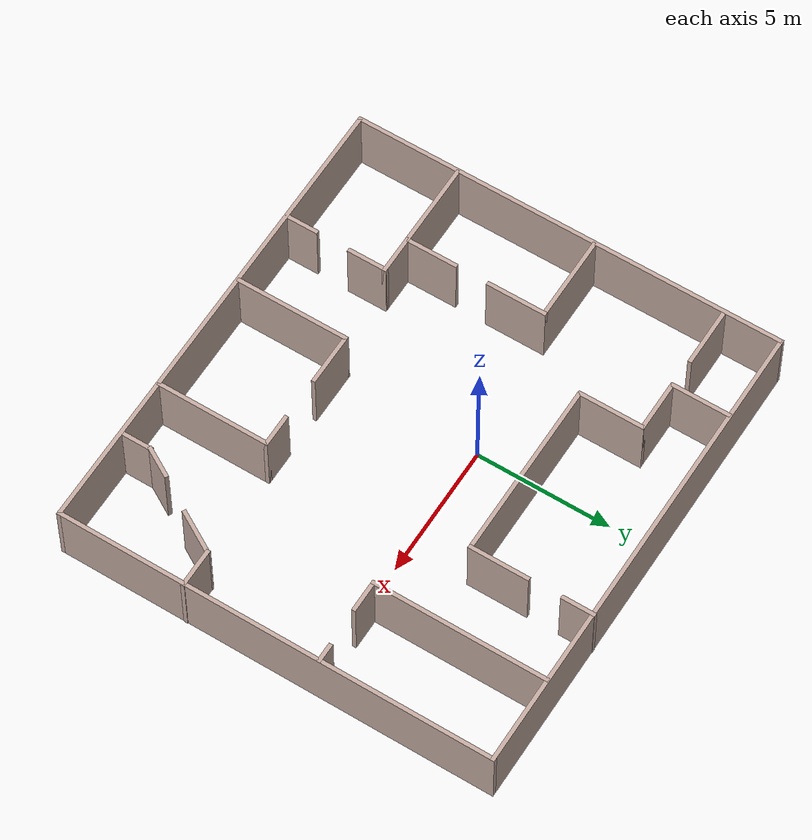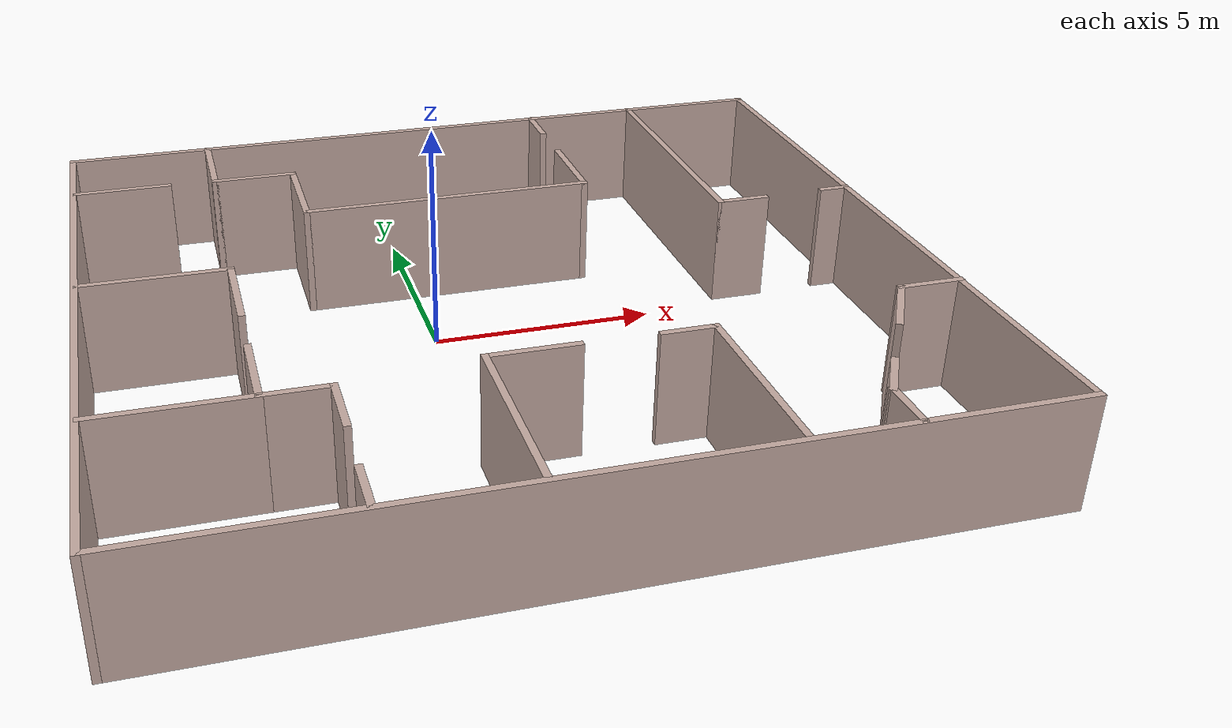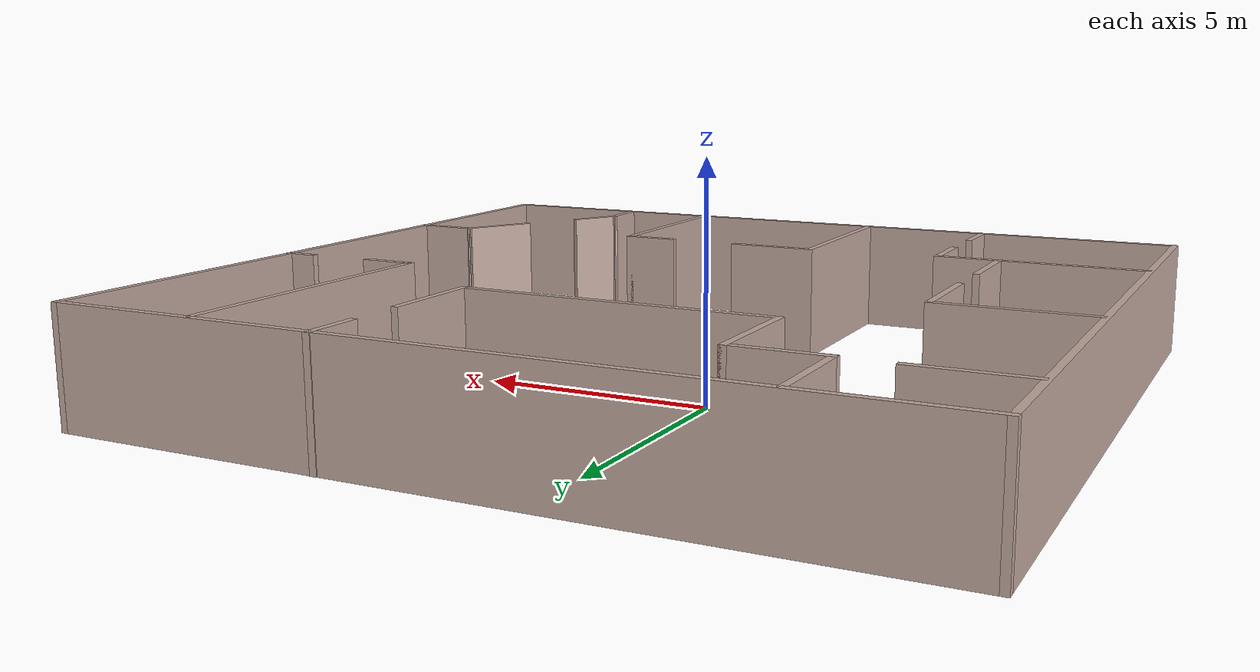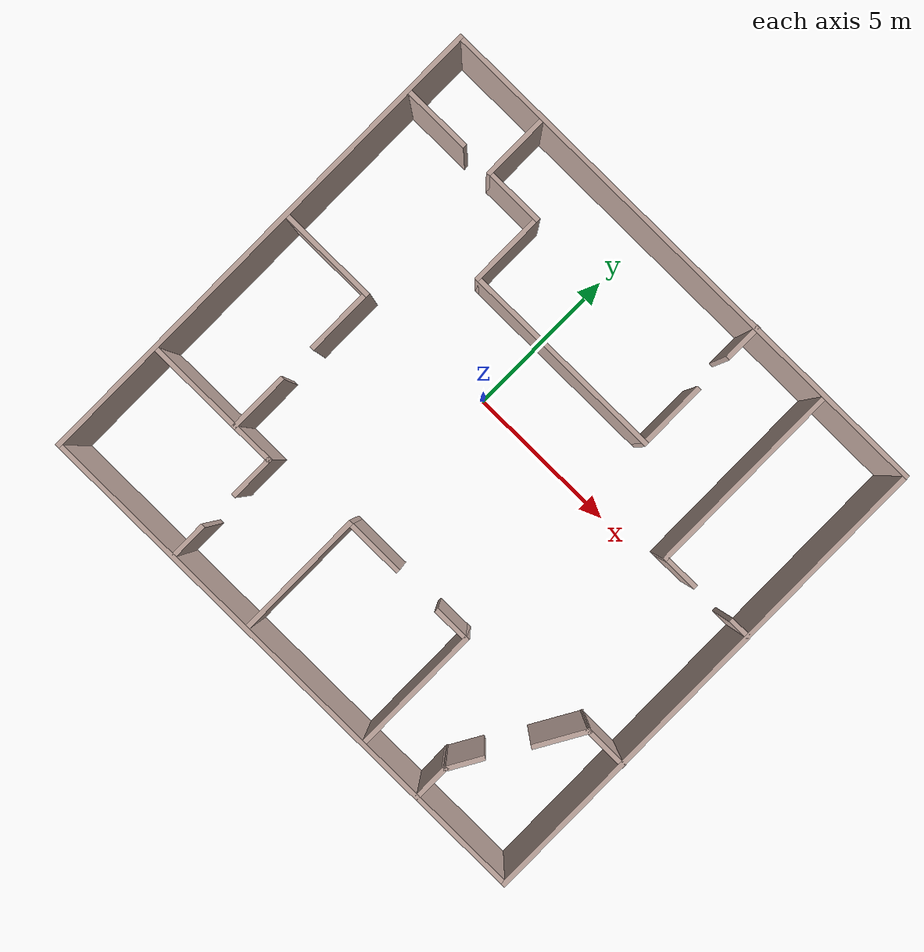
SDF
<?xml version='1.0'?>
<sdf version='1.6'>
  <model name='world2'>
    <pose frame=''>1.2436 -1.27386 0 0 -0 0</pose>
    <link name='Wall_14'>
      <collision name='Wall_14_Collision'>
        <geometry>
          <box>
            <size>16.25 0.15 2.5</size>
          </box>
        </geometry>
        <pose frame=''>0 0 1.25 0 -0 0</pose>
      </collision>
      <visual name='Wall_14_Visual'>
        <pose frame=''>0 0 1.25 0 -0 0</pose>
        <geometry>
          <box>
            <size>16.25 0.15 2.5</size>
          </box>
        </geometry>
        <material>
          <script>
            <uri>file://media/materials/scripts/gazebo.material</uri>
            <name>Gazebo/Grey</name>
          </script>
          <ambient>0.760784 0.662745 0.627451 1</ambient>
        </material>
        <meta>
          <layer>0</layer>
        </meta>
      </visual>
      <pose frame=''>-8.81102 -0.008737 0 0 0 -1.5708</pose>
    </link>
    <link name='Wall_18'>
      <collision name='Wall_18_Collision'>
        <geometry>
          <box>
            <size>17.75 0.15 2.5</size>
          </box>
        </geometry>
        <pose frame=''>0 0 1.25 0 -0 0</pose>
      </collision>
      <visual name='Wall_18_Visual'>
        <pose frame=''>0 0 1.25 0 -0 0</pose>
        <geometry>
          <box>
            <size>17.75 0.15 2.5</size>
          </box>
        </geometry>
        <material>
          <script>
            <uri>file://media/materials/scripts/gazebo.material</uri>
            <name>Gazebo/Grey</name>
          </script>
          <ambient>0.760784 0.662745 0.627451 1</ambient>
        </material>
        <meta>
          <layer>0</layer>
        </meta>
      </visual>
      <pose frame=''>-0.011023 8.04126 0 0 -0 0</pose>
    </link>
    <link name='Wall_19'>
      <collision name='Wall_19_Collision'>
        <geometry>
          <box>
            <size>16.25 0.15 2.5</size>
          </box>
        </geometry>
        <pose frame=''>0 0 1.25 0 -0 0</pose>
      </collision>
      <visual name='Wall_19_Visual'>
        <pose frame=''>0 0 1.25 0 -0 0</pose>
        <geometry>
          <box>
            <size>16.25 0.15 2.5</size>
          </box>
        </geometry>
        <material>
          <script>
            <uri>file://media/materials/scripts/gazebo.material</uri>
            <name>Gazebo/Grey</name>
          </script>
          <ambient>0.760784 0.662745 0.627451 1</ambient>
        </material>
        <meta>
          <layer>0</layer>
        </meta>
      </visual>
      <pose frame=''>8.78898 -0.008737 0 0 0 -1.5708</pose>
    </link>
    <link name='Wall_20'>
      <collision name='Wall_20_Collision'>
        <geometry>
          <box>
            <size>17.75 0.15 2.5</size>
          </box>
        </geometry>
        <pose frame=''>0 0 1.25 0 -0 0</pose>
      </collision>
      <visual name='Wall_20_Visual'>
        <pose frame=''>0 0 1.25 0 -0 0</pose>
        <geometry>
          <box>
            <size>17.75 0.15 2.5</size>
          </box>
        </geometry>
        <material>
          <script>
            <uri>file://media/materials/scripts/gazebo.material</uri>
            <name>Gazebo/Grey</name>
          </script>
          <ambient>0.760784 0.662745 0.627451 1</ambient>
        </material>
        <meta>
          <layer>0</layer>
        </meta>
      </visual>
      <pose frame=''>-0.011023 -8.05874 0 0 -0 3.14159</pose>
    </link>
    <link name='Wall_22'>
      <collision name='Wall_22_Collision'>
        <geometry>
          <box>
            <size>2.25 0.15 2.5</size>
          </box>
        </geometry>
        <pose frame=''>0 0 1.25 0 -0 0</pose>
      </collision>
      <visual name='Wall_22_Visual'>
        <pose frame=''>0 0 1.25 0 -0 0</pose>
        <geometry>
          <box>
            <size>2.25 0.15 2.5</size>
          </box>
        </geometry>
        <material>
          <script>
            <uri>file://media/materials/scripts/gazebo.material</uri>
            <name>Gazebo/Grey</name>
          </script>
          <ambient>0.760784 0.662745 0.627451 1</ambient>
        </material>
        <meta>
          <layer>0</layer>
        </meta>
      </visual>
      <pose frame=''>-7.69336 5.9402 0 0 -0 0</pose>
    </link>
    <link name='Wall_28'>
      <collision name='Wall_28_Collision'>
        <geometry>
          <box>
            <size>2.25 0.15 2.5</size>
          </box>
        </geometry>
        <pose frame=''>0 0 1.25 0 -0 0</pose>
      </collision>
      <visual name='Wall_28_Visual'>
        <pose frame=''>0 0 1.25 0 -0 0</pose>
        <geometry>
          <box>
            <size>2.25 0.15 2.5</size>
          </box>
        </geometry>
        <material>
          <script>
            <uri>file://media/materials/scripts/gazebo.material</uri>
            <name>Gazebo/Grey</name>
          </script>
          <ambient>0.760784 0.662745 0.627451 1</ambient>
        </material>
        <meta>
          <layer>0</layer>
        </meta>
      </visual>
      <pose frame=''>-5.54888 6.95412 0 0 -0 1.5708</pose>
    </link>
    <link name='Wall_30'>
      <collision name='Wall_30_Collision'>
        <geometry>
          <box>
            <size>2 0.15 2.5</size>
          </box>
        </geometry>
        <pose frame=''>0 0 1.25 0 -0 0</pose>
      </collision>
      <visual name='Wall_30_Visual'>
        <pose frame=''>0 0 1.25 0 -0 0</pose>
        <geometry>
          <box>
            <size>2 0.15 2.5</size>
          </box>
        </geometry>
        <material>
          <script>
            <uri>file://media/materials/scripts/gazebo.material</uri>
            <name>Gazebo/Grey</name>
          </script>
          <ambient>0.760784 0.662745 0.627451 1</ambient>
        </material>
        <meta>
          <layer>0</layer>
        </meta>
      </visual>
      <pose frame=''>-4.62388 5.90412 0 0 -0 0</pose>
    </link>
    <link name='Wall_31'>
      <collision name='Wall_31_Collision'>
        <geometry>
          <box>
            <size>2.5 0.15 2.5</size>
          </box>
        </geometry>
        <pose frame=''>0 0 1.25 0 -0 0</pose>
      </collision>
      <visual name='Wall_31_Visual'>
        <pose frame=''>0 0 1.25 0 -0 0</pose>
        <geometry>
          <box>
            <size>2.5 0.15 2.5</size>
          </box>
        </geometry>
        <material>
          <script>
            <uri>file://media/materials/scripts/gazebo.material</uri>
            <name>Gazebo/Grey</name>
          </script>
          <ambient>0.760784 0.662745 0.627451 1</ambient>
        </material>
        <meta>
          <layer>0</layer>
        </meta>
      </visual>
      <pose frame=''>-3.69888 4.72912 0 0 0 -1.5708</pose>
    </link>
    <link name='Wall_32'>
      <collision name='Wall_32_Collision'>
        <geometry>
          <box>
            <size>6.75 0.15 2.5</size>
          </box>
        </geometry>
        <pose frame=''>0 0 1.25 0 -0 0</pose>
      </collision>
      <visual name='Wall_32_Visual'>
        <pose frame=''>0 0 1.25 0 -0 0</pose>
        <geometry>
          <box>
            <size>6.75 0.15 2.5</size>
          </box>
        </geometry>
        <material>
          <script>
            <uri>file://media/materials/scripts/gazebo.material</uri>
            <name>Gazebo/Grey</name>
          </script>
          <ambient>0.760784 0.662745 0.627451 1</ambient>
        </material>
        <meta>
          <layer>0</layer>
        </meta>
      </visual>
      <pose frame=''>-0.398877 3.55412 0 0 -0 0</pose>
    </link>
    <link name='Wall_33'>
      <collision name='Wall_33_Collision'>
        <geometry>
          <box>
            <size>2.25 0.15 2.5</size>
          </box>
        </geometry>
        <pose frame=''>0 0 1.25 0 -0 0</pose>
      </collision>
      <visual name='Wall_33_Visual'>
        <pose frame=''>0 0 1.25 0 -0 0</pose>
        <geometry>
          <box>
            <size>2.25 0.15 2.5</size>
          </box>
        </geometry>
        <material>
          <script>
            <uri>file://media/materials/scripts/gazebo.material</uri>
            <name>Gazebo/Grey</name>
          </script>
          <ambient>0.760784 0.662745 0.627451 1</ambient>
        </material>
        <meta>
          <layer>0</layer>
        </meta>
      </visual>
      <pose frame=''>2.90112 4.60412 0 0 -0 1.5708</pose>
    </link>
    <link name='Wall_36'>
      <collision name='Wall_36_Collision'>
        <geometry>
          <box>
            <size>1.25 0.15 2.5</size>
          </box>
        </geometry>
        <pose frame=''>0 0 1.25 0 -0 0</pose>
      </collision>
      <visual name='Wall_36_Visual'>
        <pose frame=''>0 0 1.25 0 -0 0</pose>
        <geometry>
          <box>
            <size>1.25 0.15 2.5</size>
          </box>
        </geometry>
        <material>
          <script>
            <uri>file://media/materials/scripts/gazebo.material</uri>
            <name>Gazebo/Grey</name>
          </script>
          <ambient>0.760784 0.662745 0.627451 1</ambient>
        </material>
        <meta>
          <layer>0</layer>
        </meta>
      </visual>
      <pose frame=''>2.88339 7.50874 0 0 0 -1.5708</pose>
    </link>
    <link name='Wall_38'>
      <collision name='Wall_38_Collision'>
        <geometry>
          <box>
            <size>6.5 0.15 2.5</size>
          </box>
        </geometry>
        <pose frame=''>0 0 1.25 0 -0 0</pose>
      </collision>
      <visual name='Wall_38_Visual'>
        <pose frame=''>0 0 1.25 0 -0 0</pose>
        <geometry>
          <box>
            <size>6.5 0.15 2.5</size>
          </box>
        </geometry>
        <material>
          <script>
            <uri>file://media/materials/scripts/gazebo.material</uri>
            <name>Gazebo/Grey</name>
          </script>
          <ambient>0.760784 0.662745 0.627451 1</ambient>
        </material>
        <meta>
          <layer>0</layer>
        </meta>
      </visual>
      <pose frame=''>5.59661 4.83054 0 0 0 -1.5708</pose>
    </link>
    <link name='Wall_39'>
      <collision name='Wall_39_Collision'>
        <geometry>
          <box>
            <size>1.25 0.15 2.5</size>
          </box>
        </geometry>
        <pose frame=''>0 0 1.25 0 -0 0</pose>
      </collision>
      <visual name='Wall_39_Visual'>
        <pose frame=''>0 0 1.25 0 -0 0</pose>
        <geometry>
          <box>
            <size>1.25 0.15 2.5</size>
          </box>
        </geometry>
        <material>
          <script>
            <uri>file://media/materials/scripts/gazebo.material</uri>
            <name>Gazebo/Grey</name>
          </script>
          <ambient>0.760784 0.662745 0.627451 1</ambient>
        </material>
        <meta>
          <layer>0</layer>
        </meta>
      </visual>
      <pose frame=''>6.14661 1.65554 0 0 -0 0</pose>
    </link>
    <link name='Wall_43'>
      <collision name='Wall_43_Collision'>
        <geometry>
          <box>
            <size>0.75 0.15 2.5</size>
          </box>
        </geometry>
        <pose frame=''>0 0 1.25 0 -0 0</pose>
      </collision>
      <visual name='Wall_43_Visual'>
        <pose frame=''>0 0 1.25 0 -0 0</pose>
        <geometry>
          <box>
            <size>0.75 0.15 2.5</size>
          </box>
        </geometry>
        <material>
          <script>
            <uri>file://media/materials/scripts/gazebo.material</uri>
            <name>Gazebo/Grey</name>
          </script>
          <ambient>0.760784 0.662745 0.627451 1</ambient>
        </material>
        <meta>
          <layer>0</layer>
        </meta>
      </visual>
      <pose frame=''>8.48863 1.70129 0 0 -0 3.14159</pose>
    </link>
    <link name='Wall_45'>
      <collision name='Wall_45_Collision'>
        <geometry>
          <box>
            <size>3.25 0.15 2.5</size>
          </box>
        </geometry>
        <pose frame=''>0 0 1.25 0 -0 0</pose>
      </collision>
      <visual name='Wall_45_Visual'>
        <pose frame=''>0 0 1.25 0 -0 0</pose>
        <geometry>
          <box>
            <size>3.25 0.15 2.5</size>
          </box>
        </geometry>
        <material>
          <script>
            <uri>file://media/materials/scripts/gazebo.material</uri>
            <name>Gazebo/Grey</name>
          </script>
          <ambient>0.760784 0.662745 0.627451 1</ambient>
        </material>
        <meta>
          <layer>0</layer>
        </meta>
      </visual>
      <pose frame=''>-7.1909 1.03629 0 0 -0 0</pose>
    </link>
    <link name='Wall_46'>
      <collision name='Wall_46_Collision'>
        <geometry>
          <box>
            <size>2.25 0.15 2.5</size>
          </box>
        </geometry>
        <pose frame=''>0 0 1.25 0 -0 0</pose>
      </collision>
      <visual name='Wall_46_Visual'>
        <pose frame=''>0 0 1.25 0 -0 0</pose>
        <geometry>
          <box>
            <size>2.25 0.15 2.5</size>
          </box>
        </geometry>
        <material>
          <script>
            <uri>file://media/materials/scripts/gazebo.material</uri>
            <name>Gazebo/Grey</name>
          </script>
          <ambient>0.760784 0.662745 0.627451 1</ambient>
        </material>
        <meta>
          <layer>0</layer>
        </meta>
      </visual>
      <pose frame=''>-5.6409 -0.013714 0 0 0 -1.5708</pose>
    </link>
    <link name='Wall_48'>
      <collision name='Wall_48_Collision'>
        <geometry>
          <box>
            <size>2 0.15 2.5</size>
          </box>
        </geometry>
        <pose frame=''>0 0 1.25 0 -0 0</pose>
      </collision>
      <visual name='Wall_48_Visual'>
        <pose frame=''>0 0 1.25 0 -0 0</pose>
        <geometry>
          <box>
            <size>2 0.15 2.5</size>
          </box>
        </geometry>
        <material>
          <script>
            <uri>file://media/materials/scripts/gazebo.material</uri>
            <name>Gazebo/Grey</name>
          </script>
          <ambient>0.760784 0.662745 0.627451 1</ambient>
        </material>
        <meta>
          <layer>0</layer>
        </meta>
      </visual>
      <pose frame=''>-5.65528 -3.29354 0 0 0 -1.5708</pose>
    </link>
    <link name='Wall_49'>
      <collision name='Wall_49_Collision'>
        <geometry>
          <box>
            <size>3.25 0.15 2.5</size>
          </box>
        </geometry>
        <pose frame=''>0 0 1.25 0 -0 0</pose>
      </collision>
      <visual name='Wall_49_Visual'>
        <pose frame=''>0 0 1.25 0 -0 0</pose>
        <geometry>
          <box>
            <size>3.25 0.15 2.5</size>
          </box>
        </geometry>
        <material>
          <script>
            <uri>file://media/materials/scripts/gazebo.material</uri>
            <name>Gazebo/Grey</name>
          </script>
          <ambient>0.760784 0.662745 0.627451 1</ambient>
        </material>
        <meta>
          <layer>0</layer>
        </meta>
      </visual>
      <pose frame=''>-7.20528 -4.21854 0 0 -0 3.14159</pose>
    </link>
    <link name='Wall_51'>
      <collision name='Wall_51_Collision'>
        <geometry>
          <box>
            <size>1.5 0.15 2.5</size>
          </box>
        </geometry>
        <pose frame=''>0 0 1.25 0 -0 0</pose>
      </collision>
      <visual name='Wall_51_Visual'>
        <pose frame=''>0 0 1.25 0 -0 0</pose>
        <geometry>
          <box>
            <size>1.5 0.15 2.5</size>
          </box>
        </geometry>
        <material>
          <script>
            <uri>file://media/materials/scripts/gazebo.material</uri>
            <name>Gazebo/Grey</name>
          </script>
          <ambient>0.760784 0.662745 0.627451 1</ambient>
        </material>
        <meta>
          <layer>0</layer>
        </meta>
      </visual>
      <pose frame=''>-4.98028 -4.21854 0 0 -0 0</pose>
    </link>
    <link name='Wall_52'>
      <collision name='Wall_52_Collision'>
        <geometry>
          <box>
            <size>1.5 0.15 2.5</size>
          </box>
        </geometry>
        <pose frame=''>0 0 1.25 0 -0 0</pose>
      </collision>
      <visual name='Wall_52_Visual'>
        <pose frame=''>0 0 1.25 0 -0 0</pose>
        <geometry>
          <box>
            <size>1.5 0.15 2.5</size>
          </box>
        </geometry>
        <material>
          <script>
            <uri>file://media/materials/scripts/gazebo.material</uri>
            <name>Gazebo/Grey</name>
          </script>
          <ambient>0.760784 0.662745 0.627451 1</ambient>
        </material>
        <meta>
          <layer>0</layer>
        </meta>
      </visual>
      <pose frame=''>-4.30528 -4.89354 0 0 0 -1.5708</pose>
    </link>
    <link name='Wall_54'>
      <collision name='Wall_54_Collision'>
        <geometry>
          <box>
            <size>1.25 0.15 2.5</size>
          </box>
        </geometry>
        <pose frame=''>0 0 1.25 0 -0 0</pose>
      </collision>
      <visual name='Wall_54_Visual'>
        <pose frame=''>0 0 1.25 0 -0 0</pose>
        <geometry>
          <box>
            <size>1.25 0.15 2.5</size>
          </box>
        </geometry>
        <material>
          <script>
            <uri>file://media/materials/scripts/gazebo.material</uri>
            <name>Gazebo/Grey</name>
          </script>
          <ambient>0.760784 0.662745 0.627451 1</ambient>
        </material>
        <meta>
          <layer>0</layer>
        </meta>
      </visual>
      <pose frame=''>-4.32527 -7.45778 0 0 -0 1.5708</pose>
    </link>
    <link name='Wall_57'>
      <collision name='Wall_57_Collision'>
        <geometry>
          <box>
            <size>1.25 0.15 2.5</size>
          </box>
        </geometry>
        <pose frame=''>0 0 1.25 0 -0 0</pose>
      </collision>
      <visual name='Wall_57_Visual'>
        <pose frame=''>0 0 1.25 0 -0 0</pose>
        <geometry>
          <box>
            <size>1.25 0.15 2.5</size>
          </box>
        </geometry>
        <material>
          <script>
            <uri>file://media/materials/scripts/gazebo.material</uri>
            <name>Gazebo/Grey</name>
          </script>
          <ambient>0.760784 0.662745 0.627451 1</ambient>
        </material>
        <meta>
          <layer>0</layer>
        </meta>
      </visual>
      <pose frame=''>5.32423 -7.48557 0 0 -0 1.5708</pose>
    </link>
    <link name='Wall_58'>
      <collision name='Wall_58_Collision'>
        <geometry>
          <box>
            <size>1.25 0.15 2.5</size>
          </box>
        </geometry>
        <pose frame=''>0 0 1.25 0 -0 0</pose>
      </collision>
      <visual name='Wall_58_Visual'>
        <pose frame=''>0 0 1.25 0 -0 0</pose>
        <geometry>
          <box>
            <size>1.25 0.15 2.5</size>
          </box>
        </geometry>
        <material>
          <script>
            <uri>file://media/materials/scripts/gazebo.material</uri>
            <name>Gazebo/Grey</name>
          </script>
          <ambient>0.760784 0.662745 0.627451 1</ambient>
        </material>
        <meta>
          <layer>0</layer>
        </meta>
      </visual>
      <pose frame=''>5.59923 -6.45925 0 0 -0 1.0472</pose>
    </link>
    <link name='Wall_61'>
      <collision name='Wall_61_Collision'>
        <geometry>
          <box>
            <size>1.75 0.15 2.5</size>
          </box>
        </geometry>
        <pose frame=''>0 0 1.25 0 -0 0</pose>
      </collision>
      <visual name='Wall_61_Visual'>
        <pose frame=''>0 0 1.25 0 -0 0</pose>
        <geometry>
          <box>
            <size>1.75 0.15 2.5</size>
          </box>
        </geometry>
        <material>
          <script>
            <uri>file://media/materials/scripts/gazebo.material</uri>
            <name>Gazebo/Grey</name>
          </script>
          <ambient>0.760784 0.662745 0.627451 1</ambient>
        </material>
        <meta>
          <layer>0</layer>
        </meta>
      </visual>
      <pose frame=''>7.06102 -4.03594 0 0 -0 1.0472</pose>
    </link>
    <link name='Wall_63'>
      <collision name='Wall_63_Collision'>
        <geometry>
          <box>
            <size>1.5 0.15 2.5</size>
          </box>
        </geometry>
        <pose frame=''>0 0 1.25 0 -0 0</pose>
      </collision>
      <visual name='Wall_63_Visual'>
        <pose frame=''>0 0 1.25 0 -0 0</pose>
        <geometry>
          <box>
            <size>1.5 0.15 2.5</size>
          </box>
        </geometry>
        <material>
          <script>
            <uri>file://media/materials/scripts/gazebo.material</uri>
            <name>Gazebo/Grey</name>
          </script>
          <ambient>0.760784 0.662745 0.627451 1</ambient>
        </material>
        <meta>
          <layer>0</layer>
        </meta>
      </visual>
      <pose frame=''>8.13602 -3.34312 0 0 -0 0</pose>
    </link>
    <link name='Wall_65'>
      <collision name='Wall_65_Collision'>
        <geometry>
          <box>
            <size>4.25 0.15 2.5</size>
          </box>
        </geometry>
        <pose frame=''>0 0 1.25 0 -0 0</pose>
      </collision>
      <visual name='Wall_65_Visual'>
        <pose frame=''>0 0 1.25 0 -0 0</pose>
        <geometry>
          <box>
            <size>4.25 0.15 2.5</size>
          </box>
        </geometry>
        <material>
          <script>
            <uri>file://media/materials/scripts/gazebo.material</uri>
            <name>Gazebo/Grey</name>
          </script>
          <ambient>0.760784 0.662745 0.627451 1</ambient>
        </material>
        <meta>
          <layer>0</layer>
        </meta>
      </visual>
      <pose frame=''>-1.43009 -5.95039 0 0 -0 1.5708</pose>
    </link>
    <link name='Wall_66'>
      <collision name='Wall_66_Collision'>
        <geometry>
          <box>
            <size>2 0.15 2.5</size>
          </box>
        </geometry>
        <pose frame=''>0 0 1.25 0 -0 0</pose>
      </collision>
      <visual name='Wall_66_Visual'>
        <pose frame=''>0 0 1.25 0 -0 0</pose>
        <geometry>
          <box>
            <size>2 0.15 2.5</size>
          </box>
        </geometry>
        <material>
          <script>
            <uri>file://media/materials/scripts/gazebo.material</uri>
            <name>Gazebo/Grey</name>
          </script>
          <ambient>0.760784 0.662745 0.627451 1</ambient>
        </material>
        <meta>
          <layer>0</layer>
        </meta>
      </visual>
      <pose frame=''>-0.505092 -3.90039 0 0 -0 0</pose>
    </link>
    <link name='Wall_68'>
      <collision name='Wall_68_Collision'>
        <geometry>
          <box>
            <size>1.25 0.15 2.5</size>
          </box>
        </geometry>
        <pose frame=''>0 0 1.25 0 -0 0</pose>
      </collision>
      <visual name='Wall_68_Visual'>
        <pose frame=''>0 0 1.25 0 -0 0</pose>
        <geometry>
          <box>
            <size>1.25 0.15 2.5</size>
          </box>
        </geometry>
        <material>
          <script>
            <uri>file://media/materials/scripts/gazebo.material</uri>
            <name>Gazebo/Grey</name>
          </script>
          <ambient>0.760784 0.662745 0.627451 1</ambient>
        </material>
        <meta>
          <layer>0</layer>
        </meta>
      </visual>
      <pose frame=''>2.63779 -3.91965 0 0 -0 0</pose>
    </link>
    <link name='Wall_69'>
      <collision name='Wall_69_Collision'>
        <geometry>
          <box>
            <size>4.25 0.15 2.5</size>
          </box>
        </geometry>
        <pose frame=''>0 0 1.25 0 -0 0</pose>
      </collision>
      <visual name='Wall_69_Visual'>
        <pose frame=''>0 0 1.25 0 -0 0</pose>
        <geometry>
          <box>
            <size>4.25 0.15 2.5</size>
          </box>
        </geometry>
        <material>
          <script>
            <uri>file://media/materials/scripts/gazebo.material</uri>
            <name>Gazebo/Grey</name>
          </script>
          <ambient>0.760784 0.662745 0.627451 1</ambient>
        </material>
        <meta>
          <layer>0</layer>
        </meta>
      </visual>
      <pose frame=''>3.18778 -5.96965 0 0 0 -1.5708</pose>
    </link>
    <static>1</static>
  </model>
</sdf>
